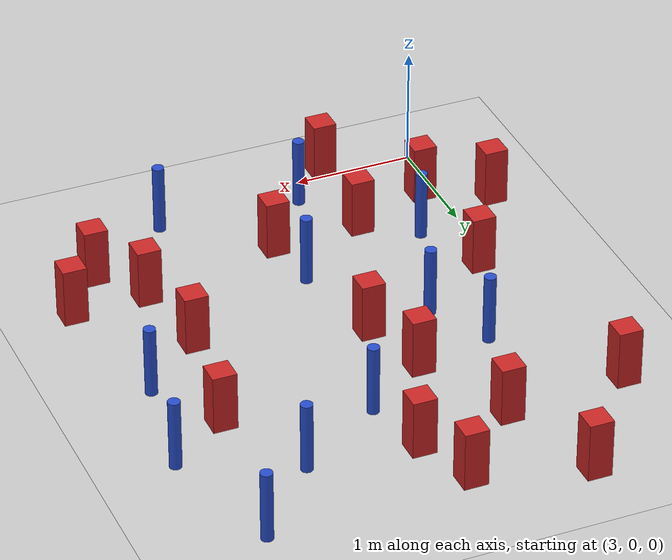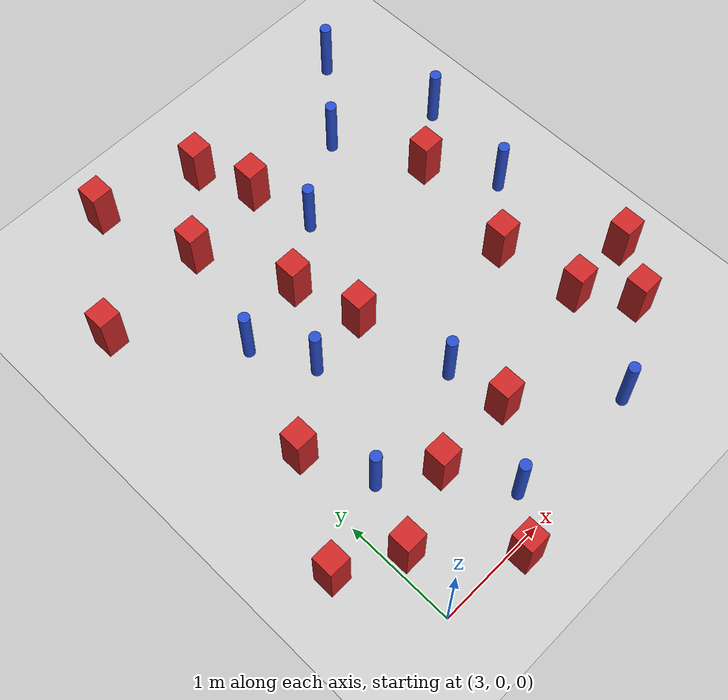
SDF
<sdf version="1.6">
 <world name="default">
  <model name="ground_plane">
   <static>1</static>
   <link name="link">
    <collision name="collision">
     <geometry><plane><normal>0 0 1</normal><size>100 100</size></plane></geometry>
     <surface><friction><ode><mu>100</mu><mu2>50</mu2></ode></friction></surface>
    </collision>
    <visual name="visual">
     <cast_shadows>0</cast_shadows>
     <geometry><plane><normal>0 0 1</normal><size>100 100</size></plane></geometry>
     <material>
      <ambient>1.0 1.0 1.0 1.0</ambient>
      <diffuse>0.8 0.8 0.8 1.0</diffuse>
      <specular>0.01 0.01 0.01 1.000000</specular>
     </material>
    </visual>
   </link>
  </model>
  <model name="square_post_obstacle0">
   <static>true</static>
   <pose>3.47742951445 4.54623904992 8.22691968438e-08 7.2212513382e-06 -7.54495500217e-07 2.29674213826e-05</pose>
   <link name="link">
    <pose>0 0 0.25 0 -0 0</pose>
    <inertial>
     <mass>100</mass>
     <inertia>
      <ixx>0.166667</ixx>
      <ixy>0</ixy>
      <ixz>0</ixz>
      <iyy>0.166667</iyy>
      <iyz>0</iyz>
      <izz>0.166667</izz>
     </inertia>
    </inertial>
    <collision name="collision"><geometry><box><size>.2 .2 .5</size></box></geometry></collision>
    <visual name="visual">
     <geometry><box><size>.2 .2 .5</size></box></geometry>
     <material>
      <script><name>Gazebo/Red</name><uri>file://media/materials/scripts/gazebo.material</uri></script>
     </material>
    </visual>
   </link>
  </model>
  <model name="square_post_obstacle1">
   <static>true</static>
   <pose>4.56344574119 0.853142851961 8.22691968438e-08 7.2212513382e-06 -7.54495500217e-07 2.29674213826e-05</pose>
   <link name="link">
    <pose>0 0 0.25 0 -0 0</pose>
    <inertial>
     <mass>100</mass>
     <inertia>
      <ixx>0.166667</ixx>
      <ixy>0</ixy>
      <ixz>0</ixz>
      <iyy>0.166667</iyy>
      <iyz>0</iyz>
      <izz>0.166667</izz>
     </inertia>
    </inertial>
    <collision name="collision"><geometry><box><size>.2 .2 .5</size></box></geometry></collision>
    <visual name="visual">
     <geometry><box><size>.2 .2 .5</size></box></geometry>
     <material>
      <script><name>Gazebo/Red</name><uri>file://media/materials/scripts/gazebo.material</uri></script>
     </material>
    </visual>
   </link>
  </model>
  <model name="square_post_obstacle3">
   <static>true</static>
   <pose>6.05488720477 0.67913591342 8.22691968438e-08 7.2212513382e-06 -7.54495500217e-07 2.29674213826e-05</pose>
   <link name="link">
    <pose>0 0 0.25 0 -0 0</pose>
    <inertial>
     <mass>100</mass>
     <inertia>
      <ixx>0.166667</ixx>
      <ixy>0</ixy>
      <ixz>0</ixz>
      <iyy>0.166667</iyy>
      <iyz>0</iyz>
      <izz>0.166667</izz>
     </inertia>
    </inertial>
    <collision name="collision"><geometry><box><size>.2 .2 .5</size></box></geometry></collision>
    <visual name="visual">
     <geometry><box><size>.2 .2 .5</size></box></geometry>
     <material>
      <script><name>Gazebo/Red</name><uri>file://media/materials/scripts/gazebo.material</uri></script>
     </material>
    </visual>
   </link>
  </model>
  <model name="square_post_obstacle24">
   <static>true</static>
   <pose>4.31556763896 2.23022719634 8.22691968438e-08 7.2212513382e-06 -7.54495500217e-07 2.29674213826e-05</pose>
   <link name="link">
    <pose>0 0 0.25 0 -0 0</pose>
    <inertial>
     <mass>100</mass>
     <inertia>
      <ixx>0.166667</ixx>
      <ixy>0</ixy>
      <ixz>0</ixz>
      <iyy>0.166667</iyy>
      <iyz>0</iyz>
      <izz>0.166667</izz>
     </inertia>
    </inertial>
    <collision name="collision"><geometry><box><size>.2 .2 .5</size></box></geometry></collision>
    <visual name="visual">
     <geometry><box><size>.2 .2 .5</size></box></geometry>
     <material>
      <script><name>Gazebo/Red</name><uri>file://media/materials/scripts/gazebo.material</uri></script>
     </material>
    </visual>
   </link>
  </model>
  <model name="pole_obstacle43">
   <static>true</static>
   <pose>5.31301693984 0.208781446296 2.88873142074e-08 -9.90536689438e-09 4.60219948999e-07 -1.20965994956e-07</pose>
   <link name="link">
    <pose>0 0 0.3 0 -0 0</pose>
    <inertial>
     <mass>1</mass>
     <inertia><ixx>0.145833</ixx><ixy>0</ixy><ixz>0</ixz><iyy>0.145833</iyy><iyz>0</iyz><izz>0.125</izz></inertia>
    </inertial>
    <collision name="collision">
     <geometry><cylinder><radius>0.05</radius><length>.6</length></cylinder></geometry>
    </collision>
    <visual name="visual">
     <geometry><cylinder><radius>0.05</radius><length>.6</length></cylinder></geometry>
     <material>
      <script><name>Gazebo/Blue</name><uri>file://media/materials/scripts/gazebo.material</uri></script>
     </material>
    </visual>
   </link>
  </model>
  <model name="square_post_obstacle38">
   <static>true</static>
   <pose>4.37278872621 4.28910100385 8.22691968438e-08 7.2212513382e-06 -7.54495500217e-07 2.29674213826e-05</pose>
   <link name="link">
    <pose>0 0 0.25 0 -0 0</pose>
    <inertial>
     <mass>100</mass>
     <inertia>
      <ixx>0.166667</ixx>
      <ixy>0</ixy>
      <ixz>0</ixz>
      <iyy>0.166667</iyy>
      <iyz>0</iyz>
      <izz>0.166667</izz>
     </inertia>
    </inertial>
    <collision name="collision"><geometry><box><size>.2 .2 .5</size></box></geometry></collision>
    <visual name="visual">
     <geometry><box><size>.2 .2 .5</size></box></geometry>
     <material>
      <script><name>Gazebo/Red</name><uri>file://media/materials/scripts/gazebo.material</uri></script>
     </material>
    </visual>
   </link>
  </model>
  <model name="square_post_obstacle51">
   <static>true</static>
   <pose>3.80689490585 0.824405874443 8.22691968438e-08 7.2212513382e-06 -7.54495500217e-07 2.29674213826e-05</pose>
   <link name="link">
    <pose>0 0 0.25 0 -0 0</pose>
    <inertial>
     <mass>100</mass>
     <inertia>
      <ixx>0.166667</ixx>
      <ixy>0</ixy>
      <ixz>0</ixz>
      <iyy>0.166667</iyy>
      <iyz>0</iyz>
      <izz>0.166667</izz>
     </inertia>
    </inertial>
    <collision name="collision"><geometry><box><size>.2 .2 .5</size></box></geometry></collision>
    <visual name="visual">
     <geometry><box><size>.2 .2 .5</size></box></geometry>
     <material>
      <script><name>Gazebo/Red</name><uri>file://media/materials/scripts/gazebo.material</uri></script>
     </material>
    </visual>
   </link>
  </model>
  <model name="square_post_obstacle58">
   <static>true</static>
   <pose>3.13265907672 0.556025576063 8.22691968438e-08 7.2212513382e-06 -7.54495500217e-07 2.29674213826e-05</pose>
   <link name="link">
    <pose>0 0 0.25 0 -0 0</pose>
    <inertial>
     <mass>100</mass>
     <inertia>
      <ixx>0.166667</ixx>
      <ixy>0</ixy>
      <ixz>0</ixz>
      <iyy>0.166667</iyy>
      <iyz>0</iyz>
      <izz>0.166667</izz>
     </inertia>
    </inertial>
    <collision name="collision"><geometry><box><size>.2 .2 .5</size></box></geometry></collision>
    <visual name="visual">
     <geometry><box><size>.2 .2 .5</size></box></geometry>
     <material>
      <script><name>Gazebo/Red</name><uri>file://media/materials/scripts/gazebo.material</uri></script>
     </material>
    </visual>
   </link>
  </model>
  <model name="square_post_obstacle60">
   <static>true</static>
   <pose>5.64865577283 1.85091283785 8.22691968438e-08 7.2212513382e-06 -7.54495500217e-07 2.29674213826e-05</pose>
   <link name="link">
    <pose>0 0 0.25 0 -0 0</pose>
    <inertial>
     <mass>100</mass>
     <inertia>
      <ixx>0.166667</ixx>
      <ixy>0</ixy>
      <ixz>0</ixz>
      <iyy>0.166667</iyy>
      <iyz>0</iyz>
      <izz>0.166667</izz>
     </inertia>
    </inertial>
    <collision name="collision"><geometry><box><size>.2 .2 .5</size></box></geometry></collision>
    <visual name="visual">
     <geometry><box><size>.2 .2 .5</size></box></geometry>
     <material>
      <script><name>Gazebo/Red</name><uri>file://media/materials/scripts/gazebo.material</uri></script>
     </material>
    </visual>
   </link>
  </model>
  <model name="pole_obstacle82">
   <static>true</static>
   <pose>6.17669661662 2.3231408978 2.88873142074e-08 -9.90536690245e-09 4.6021994898e-07 -1.20965994966e-07</pose>
   <link name="link">
    <pose>0 0 0.3 0 -0 0</pose>
    <inertial>
     <mass>1</mass>
     <inertia><ixx>0.145833</ixx><ixy>0</ixy><ixz>0</ixz><iyy>0.145833</iyy><iyz>0</iyz><izz>0.125</izz></inertia>
    </inertial>
    <collision name="collision">
     <geometry><cylinder><radius>0.05</radius><length>.6</length></cylinder></geometry>
    </collision>
    <visual name="visual">
     <geometry><cylinder><radius>0.05</radius><length>.6</length></cylinder></geometry>
     <material>
      <script><name>Gazebo/Blue</name><uri>file://media/materials/scripts/gazebo.material</uri></script>
     </material>
    </visual>
   </link>
  </model>
  <model name="pole_obstacle105">
   <static>true</static>
   <pose>4.109856473 0.279371529335 2.88873142074e-08 -9.90536689883e-09 4.60219948988e-07 -1.20965994961e-07</pose>
   <link name="link">
    <pose>0 0 0.3 0 -0 0</pose>
    <inertial>
     <mass>1</mass>
     <inertia><ixx>0.145833</ixx><ixy>0</ixy><ixz>0</ixz><iyy>0.145833</iyy><iyz>0</iyz><izz>0.125</izz></inertia>
    </inertial>
    <collision name="collision">
     <geometry><cylinder><radius>0.05</radius><length>.6</length></cylinder></geometry>
    </collision>
    <visual name="visual">
     <geometry><cylinder><radius>0.05</radius><length>.6</length></cylinder></geometry>
     <material>
      <script><name>Gazebo/Blue</name><uri>file://media/materials/scripts/gazebo.material</uri></script>
     </material>
    </visual>
   </link>
  </model>
  <model name="square_post_obstacle105">
   <static>true</static>
   <pose>2.75124358407 3.57715138471 8.22691968438e-08 7.2212513382e-06 -7.54495500217e-07 2.29674213826e-05</pose>
   <link name="link">
    <pose>0 0 0.25 0 -0 0</pose>
    <inertial>
     <mass>100</mass>
     <inertia>
      <ixx>0.166667</ixx>
      <ixy>0</ixy>
      <ixz>0</ixz>
      <iyy>0.166667</iyy>
      <iyz>0</iyz>
      <izz>0.166667</izz>
     </inertia>
    </inertial>
    <collision name="collision"><geometry><box><size>.2 .2 .5</size></box></geometry></collision>
    <visual name="visual">
     <geometry><box><size>.2 .2 .5</size></box></geometry>
     <material>
      <script><name>Gazebo/Red</name><uri>file://media/materials/scripts/gazebo.material</uri></script>
     </material>
    </visual>
   </link>
  </model>
  <model name="pole_obstacle112">
   <static>true</static>
   <pose>5.44602784341 3.68789140573 2.88873142074e-08 -9.90536690245e-09 4.6021994898e-07 -1.20965994966e-07</pose>
   <link name="link">
    <pose>0 0 0.3 0 -0 0</pose>
    <inertial>
     <mass>1</mass>
     <inertia><ixx>0.145833</ixx><ixy>0</ixy><ixz>0</ixz><iyy>0.145833</iyy><iyz>0</iyz><izz>0.125</izz></inertia>
    </inertial>
    <collision name="collision">
     <geometry><cylinder><radius>0.05</radius><length>.6</length></cylinder></geometry>
    </collision>
    <visual name="visual">
     <geometry><cylinder><radius>0.05</radius><length>.6</length></cylinder></geometry>
     <material>
      <script><name>Gazebo/Blue</name><uri>file://media/materials/scripts/gazebo.material</uri></script>
     </material>
    </visual>
   </link>
  </model>
  <model name="square_post_obstacle113">
   <static>true</static>
   <pose>5.82807037629 2.90422178358 8.22691968438e-08 7.2212513382e-06 -7.54495500217e-07 2.29674213826e-05</pose>
   <link name="link">
    <pose>0 0 0.25 0 -0 0</pose>
    <inertial>
     <mass>100</mass>
     <inertia>
      <ixx>0.166667</ixx>
      <ixy>0</ixy>
      <ixz>0</ixz>
      <iyy>0.166667</iyy>
      <iyz>0</iyz>
      <izz>0.166667</izz>
     </inertia>
    </inertial>
    <collision name="collision"><geometry><box><size>.2 .2 .5</size></box></geometry></collision>
    <visual name="visual">
     <geometry><box><size>.2 .2 .5</size></box></geometry>
     <material>
      <script><name>Gazebo/Red</name><uri>file://media/materials/scripts/gazebo.material</uri></script>
     </material>
    </visual>
   </link>
  </model>
  <model name="square_post_obstacle115">
   <static>true</static>
   <pose>2.61249766033 0.830351981302 8.22691968438e-08 7.2212513382e-06 -7.54495500217e-07 2.29674213826e-05</pose>
   <link name="link">
    <pose>0 0 0.25 0 -0 0</pose>
    <inertial>
     <mass>100</mass>
     <inertia>
      <ixx>0.166667</ixx>
      <ixy>0</ixy>
      <ixz>0</ixz>
      <iyy>0.166667</iyy>
      <iyz>0</iyz>
      <izz>0.166667</izz>
     </inertia>
    </inertial>
    <collision name="collision"><geometry><box><size>.2 .2 .5</size></box></geometry></collision>
    <visual name="visual">
     <geometry><box><size>.2 .2 .5</size></box></geometry>
     <material>
      <script><name>Gazebo/Red</name><uri>file://media/materials/scripts/gazebo.material</uri></script>
     </material>
    </visual>
   </link>
  </model>
  <model name="pole_obstacle135">
   <static>true</static>
   <pose>4.49138830857 1.37029863379 2.88873142074e-08 -9.90536689445e-09 4.60219948999e-07 -1.20965994956e-07</pose>
   <link name="link">
    <pose>0 0 0.3 0 -0 0</pose>
    <inertial>
     <mass>1</mass>
     <inertia><ixx>0.145833</ixx><ixy>0</ixy><ixz>0</ixz><iyy>0.145833</iyy><iyz>0</iyz><izz>0.125</izz></inertia>
    </inertial>
    <collision name="collision">
     <geometry><cylinder><radius>0.05</radius><length>.6</length></cylinder></geometry>
    </collision>
    <visual name="visual">
     <geometry><cylinder><radius>0.05</radius><length>.6</length></cylinder></geometry>
     <material>
      <script><name>Gazebo/Blue</name><uri>file://media/materials/scripts/gazebo.material</uri></script>
     </material>
    </visual>
   </link>
  </model>
  <model name="square_post_obstacle141">
   <static>true</static>
   <pose>3.78027963631 3.66145778772 8.22691968438e-08 7.2212513382e-06 -7.54495500217e-07 2.29674213826e-05</pose>
   <link name="link">
    <pose>0 0 0.25 0 -0 0</pose>
    <inertial>
     <mass>100</mass>
     <inertia>
      <ixx>0.166667</ixx>
      <ixy>0</ixy>
      <ixz>0</ixz>
      <iyy>0.166667</iyy>
      <iyz>0</iyz>
      <izz>0.166667</izz>
     </inertia>
    </inertial>
    <collision name="collision"><geometry><box><size>.2 .2 .5</size></box></geometry></collision>
    <visual name="visual">
     <geometry><box><size>.2 .2 .5</size></box></geometry>
     <material>
      <script><name>Gazebo/Red</name><uri>file://media/materials/scripts/gazebo.material</uri></script>
     </material>
    </visual>
   </link>
  </model>
  <model name="square_post_obstacle142">
   <static>true</static>
   <pose>4.56599875189 3.78102459788 8.22691968438e-08 7.2212513382e-06 -7.54495500217e-07 2.29674213826e-05</pose>
   <link name="link">
    <pose>0 0 0.25 0 -0 0</pose>
    <inertial>
     <mass>100</mass>
     <inertia>
      <ixx>0.166667</ixx>
      <ixy>0</ixy>
      <ixz>0</ixz>
      <iyy>0.166667</iyy>
      <iyz>0</iyz>
      <izz>0.166667</izz>
     </inertia>
    </inertial>
    <collision name="collision"><geometry><box><size>.2 .2 .5</size></box></geometry></collision>
    <visual name="visual">
     <geometry><box><size>.2 .2 .5</size></box></geometry>
     <material>
      <script><name>Gazebo/Red</name><uri>file://media/materials/scripts/gazebo.material</uri></script>
     </material>
    </visual>
   </link>
  </model>
  <model name="pole_obstacle150">
   <static>true</static>
   <pose>3.37771403027 1.12221853903 2.88873142074e-08 -9.90536689395e-09 4.60219949e-07 -1.20965994953e-07</pose>
   <link name="link">
    <pose>0 0 0.3 0 -0 0</pose>
    <inertial>
     <mass>1</mass>
     <inertia><ixx>0.145833</ixx><ixy>0</ixy><ixz>0</ixz><iyy>0.145833</iyy><iyz>0</iyz><izz>0.125</izz></inertia>
    </inertial>
    <collision name="collision">
     <geometry><cylinder><radius>0.05</radius><length>.6</length></cylinder></geometry>
    </collision>
    <visual name="visual">
     <geometry><cylinder><radius>0.05</radius><length>.6</length></cylinder></geometry>
     <material>
      <script><name>Gazebo/Blue</name><uri>file://media/materials/scripts/gazebo.material</uri></script>
     </material>
    </visual>
   </link>
  </model>
  <model name="pole_obstacle155">
   <static>true</static>
   <pose>3.76198942432 2.16640589283 2.88873142074e-08 -9.90536690232e-09 4.6021994898e-07 -1.20965994968e-07</pose>
   <link name="link">
    <pose>0 0 0.3 0 -0 0</pose>
    <inertial>
     <mass>1</mass>
     <inertia><ixx>0.145833</ixx><ixy>0</ixy><ixz>0</ixz><iyy>0.145833</iyy><iyz>0</iyz><izz>0.125</izz></inertia>
    </inertial>
    <collision name="collision">
     <geometry><cylinder><radius>0.05</radius><length>.6</length></cylinder></geometry>
    </collision>
    <visual name="visual">
     <geometry><cylinder><radius>0.05</radius><length>.6</length></cylinder></geometry>
     <material>
      <script><name>Gazebo/Blue</name><uri>file://media/materials/scripts/gazebo.material</uri></script>
     </material>
    </visual>
   </link>
  </model>
  <model name="square_post_obstacle162">
   <static>true</static>
   <pose>4.14823338981 2.82570264748 8.22691968438e-08 7.2212513382e-06 -7.54495500217e-07 2.29674213826e-05</pose>
   <link name="link">
    <pose>0 0 0.25 0 -0 0</pose>
    <inertial>
     <mass>100</mass>
     <inertia>
      <ixx>0.166667</ixx>
      <ixy>0</ixy>
      <ixz>0</ixz>
      <iyy>0.166667</iyy>
      <iyz>0</iyz>
      <izz>0.166667</izz>
     </inertia>
    </inertial>
    <collision name="collision"><geometry><box><size>.2 .2 .5</size></box></geometry></collision>
    <visual name="visual">
     <geometry><box><size>.2 .2 .5</size></box></geometry>
     <material>
      <script><name>Gazebo/Red</name><uri>file://media/materials/scripts/gazebo.material</uri></script>
     </material>
    </visual>
   </link>
  </model>
  <model name="square_post_obstacle164">
   <static>true</static>
   <pose>3.76026765252 -0.0889878182968 8.22691968438e-08 7.22125133819e-06 -7.54495500217e-07 2.29674213826e-05</pose>
   <link name="link">
    <pose>0 0 0.25 0 -0 0</pose>
    <inertial>
     <mass>100</mass>
     <inertia>
      <ixx>0.166667</ixx>
      <ixy>0</ixy>
      <ixz>0</ixz>
      <iyy>0.166667</iyy>
      <iyz>0</iyz>
      <izz>0.166667</izz>
     </inertia>
    </inertial>
    <collision name="collision"><geometry><box><size>.2 .2 .5</size></box></geometry></collision>
    <visual name="visual">
     <geometry><box><size>.2 .2 .5</size></box></geometry>
     <material>
      <script><name>Gazebo/Red</name><uri>file://media/materials/scripts/gazebo.material</uri></script>
     </material>
    </visual>
   </link>
  </model>
  <model name="pole_obstacle171">
   <static>true</static>
   <pose>4.7011855921 3.20909808148 2.88873142074e-08 -9.90536690245e-09 4.6021994898e-07 -1.20965994966e-07</pose>
   <link name="link">
    <pose>0 0 0.3 0 -0 0</pose>
    <inertial>
     <mass>1</mass>
     <inertia><ixx>0.145833</ixx><ixy>0</ixy><ixz>0</ixz><iyy>0.145833</iyy><iyz>0</iyz><izz>0.125</izz></inertia>
    </inertial>
    <collision name="collision">
     <geometry><cylinder><radius>0.05</radius><length>.6</length></cylinder></geometry>
    </collision>
    <visual name="visual">
     <geometry><cylinder><radius>0.05</radius><length>.6</length></cylinder></geometry>
     <material>
      <script><name>Gazebo/Blue</name><uri>file://media/materials/scripts/gazebo.material</uri></script>
     </material>
    </visual>
   </link>
  </model>
  <model name="square_post_obstacle180">
   <static>true</static>
   <pose>3.12505075817 1.70472971356 8.22691968438e-08 7.2212513382e-06 -7.54495500217e-07 2.29674213826e-05</pose>
   <link name="link">
    <pose>0 0 0.25 0 -0 0</pose>
    <inertial>
     <mass>100</mass>
     <inertia>
      <ixx>0.166667</ixx>
      <ixy>0</ixy>
      <ixz>0</ixz>
      <iyy>0.166667</iyy>
      <iyz>0</iyz>
      <izz>0.166667</izz>
     </inertia>
    </inertial>
    <collision name="collision"><geometry><box><size>.2 .2 .5</size></box></geometry></collision>
    <visual name="visual">
     <geometry><box><size>.2 .2 .5</size></box></geometry>
     <material>
      <script><name>Gazebo/Red</name><uri>file://media/materials/scripts/gazebo.material</uri></script>
     </material>
    </visual>
   </link>
  </model>
  <model name="pole_obstacle184">
   <static>true</static>
   <pose>6.03258659648 4.34740590555 2.88873142074e-08 -9.90536690842e-09 4.60219948965e-07 -1.20965994976e-07</pose>
   <link name="link">
    <pose>0 0 0.3 0 -0 0</pose>
    <inertial>
     <mass>1</mass>
     <inertia><ixx>0.145833</ixx><ixy>0</ixy><ixz>0</ixz><iyy>0.145833</iyy><iyz>0</iyz><izz>0.125</izz></inertia>
    </inertial>
    <collision name="collision">
     <geometry><cylinder><radius>0.05</radius><length>.6</length></cylinder></geometry>
    </collision>
    <visual name="visual">
     <geometry><cylinder><radius>0.05</radius><length>.6</length></cylinder></geometry>
     <material>
      <script><name>Gazebo/Blue</name><uri>file://media/materials/scripts/gazebo.material</uri></script>
     </material>
    </visual>
   </link>
  </model>
  <model name="square_post_obstacle190">
   <static>true</static>
   <pose>6.39154594503 1.12446598925 8.22691968438e-08 7.2212513382e-06 -7.54495500217e-07 2.29674213826e-05</pose>
   <link name="link">
    <pose>0 0 0.25 0 -0 0</pose>
    <inertial>
     <mass>100</mass>
     <inertia>
      <ixx>0.166667</ixx>
      <ixy>0</ixy>
      <ixz>0</ixz>
      <iyy>0.166667</iyy>
      <iyz>0</iyz>
      <izz>0.166667</izz>
     </inertia>
    </inertial>
    <collision name="collision"><geometry><box><size>.2 .2 .5</size></box></geometry></collision>
    <visual name="visual">
     <geometry><box><size>.2 .2 .5</size></box></geometry>
     <material>
      <script><name>Gazebo/Red</name><uri>file://media/materials/scripts/gazebo.material</uri></script>
     </material>
    </visual>
   </link>
  </model>
  <model name="pole_obstacle192">
   <static>true</static>
   <pose>6.33815954971 3.27278372221 2.88873142074e-08 -9.90536690245e-09 4.6021994898e-07 -1.20965994966e-07</pose>
   <link name="link">
    <pose>0 0 0.3 0 -0 0</pose>
    <inertial>
     <mass>1</mass>
     <inertia><ixx>0.145833</ixx><ixy>0</ixy><ixz>0</ixz><iyy>0.145833</iyy><iyz>0</iyz><izz>0.125</izz></inertia>
    </inertial>
    <collision name="collision">
     <geometry><cylinder><radius>0.05</radius><length>.6</length></cylinder></geometry>
    </collision>
    <visual name="visual">
     <geometry><cylinder><radius>0.05</radius><length>.6</length></cylinder></geometry>
     <material>
      <script><name>Gazebo/Blue</name><uri>file://media/materials/scripts/gazebo.material</uri></script>
     </material>
    </visual>
   </link>
  </model>
  <model name="square_post_obstacle202">
   <static>true</static>
   <pose>5.76232140554 1.10647265176 8.22691968438e-08 7.2212513382e-06 -7.54495500217e-07 2.29674213826e-05</pose>
   <link name="link">
    <pose>0 0 0.25 0 -0 0</pose>
    <inertial>
     <mass>100</mass>
     <inertia>
      <ixx>0.166667</ixx>
      <ixy>0</ixy>
      <ixz>0</ixz>
      <iyy>0.166667</iyy>
      <iyz>0</iyz>
      <izz>0.166667</izz>
     </inertia>
    </inertial>
    <collision name="collision"><geometry><box><size>.2 .2 .5</size></box></geometry></collision>
    <visual name="visual">
     <geometry><box><size>.2 .2 .5</size></box></geometry>
     <material>
      <script><name>Gazebo/Red</name><uri>file://media/materials/scripts/gazebo.material</uri></script>
     </material>
    </visual>
   </link>
  </model>
  <model name="pole_obstacle201">
   <static>true</static>
   <pose>3.48934836218 2.69029908094 2.88873142074e-08 -9.90536690232e-09 4.6021994898e-07 -1.20965994968e-07</pose>
   <link name="link">
    <pose>0 0 0.3 0 -0 0</pose>
    <inertial>
     <mass>1</mass>
     <inertia><ixx>0.145833</ixx><ixy>0</ixy><ixz>0</ixz><iyy>0.145833</iyy><iyz>0</iyz><izz>0.125</izz></inertia>
    </inertial>
    <collision name="collision">
     <geometry><cylinder><radius>0.05</radius><length>.6</length></cylinder></geometry>
    </collision>
    <visual name="visual">
     <geometry><cylinder><radius>0.05</radius><length>.6</length></cylinder></geometry>
     <material>
      <script><name>Gazebo/Blue</name><uri>file://media/materials/scripts/gazebo.material</uri></script>
     </material>
    </visual>
   </link>
  </model>
 </world>
</sdf>
